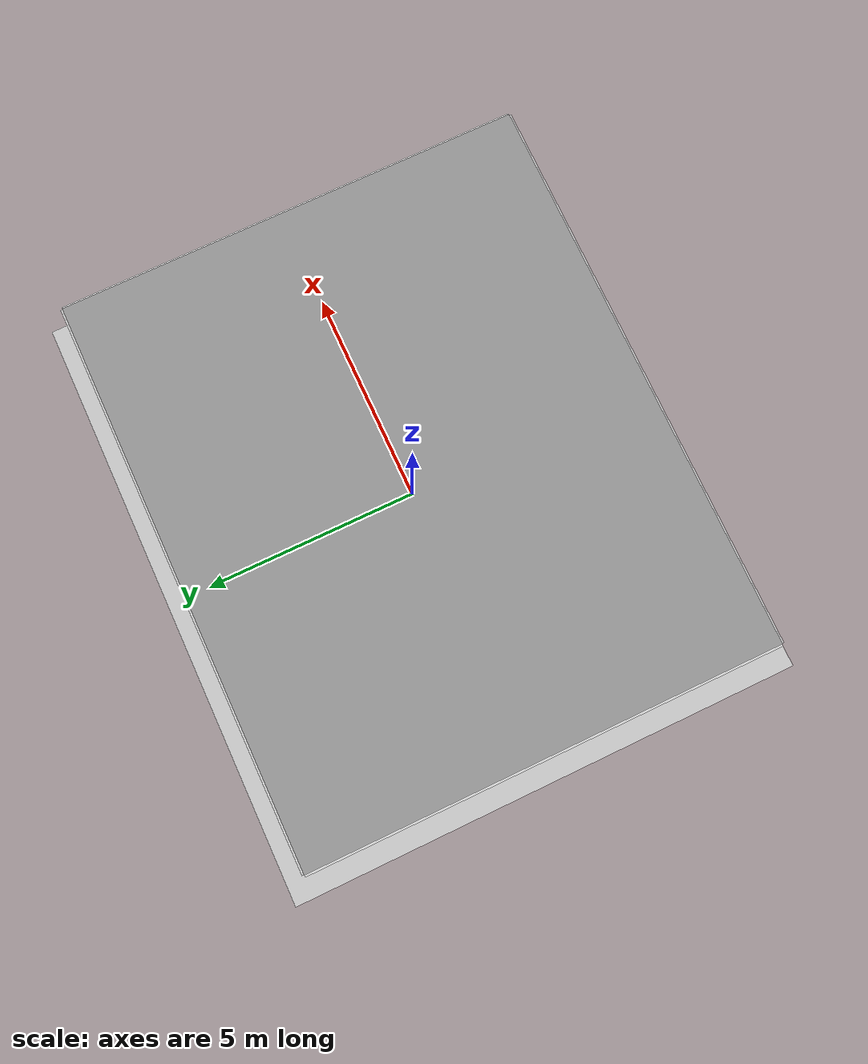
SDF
<?xml version="1.0"?>
<sdf version="1.6">
  <world name="overrack_indoor">

    <!-- Enable Gazebo ROS API plugin for ROS2 services -->

    <!-- Publishes /gazebo/model_states and /gazebo/link_states to ROS2 -->
    <plugin name="gazebo_ros_state" filename="libgazebo_ros_state.so">
      <ros>
        <namespace>/gazebo</namespace>
      </ros>
    </plugin>
    <!-- Provides /gazebo/get_model_state and /gazebo/get_entity_state services -->

    <model name="origin_marker">
  <static>true</static>
  <pose>0 0 0 0 0 0</pose>
  <link name="link">
    <visual name="visual">
      <geometry>
        <box>
          <size>0.2 0.2 0.2</size>
        </box>
      </geometry>
      <material>
        <ambient>1 0 0 1</ambient> <!-- rosso brillante -->
        <diffuse>1 0 0 1</diffuse>
      </material>
    </visual>
  </link>
</model>

    <gravity>0 0 -9.81</gravity>
    <scene>
      <ambient>0.4 0.4 0.4 1</ambient>
      <background>0.7 0.7 0.8 1</background>
      <shadows>true</shadows>
    </scene>

<gui fullscreen="0">
  <camera name="overrack_default">
    <!-- Posizione iniziale della camera nel mondo -->
    <pose>-6 -6 8.0 0 0.75 0.7</pose>

    <!-- Camera in modalità FPS -->
    <view_controller>fps</view_controller>

    <!-- Segui il drone -->
  </camera>
</gui>

    <physics type="ode">
      <max_step_size>0.004</max_step_size>
      <real_time_update_rate>250</real_time_update_rate>
      <real_time_factor>1.0</real_time_factor>
    </physics>

    <include>
      <uri>model://ground_plane</uri>
    </include>

    <!-- Simple room walls -->
    <model name="room">
      <static>true</static>
      <pose>0 0 0 0 0 0</pose>
      <!-- Roof -->
      <link name="roof">
        <pose>0 0 3.0 0 0 0</pose>
        <collision name="col">
          <geometry>
            <box>
              <size>12 10 0.1</size>
            </box>
          </geometry>
        </collision>
        <visual name="vis">
          <geometry>
            <box>
              <size>12 10 0.1</size>
            </box>
          </geometry>
          <material>
            <script>
                <name>Gazebo/Gray</name>
            </script>
            <transparency>0.7</transparency>
            <ambient>1 1 1 0.1</ambient>
            <diffuse>1 1 1 0.1</diffuse>
          </material>
        </visual>
      </link>

      <!-- Four walls: 12m x 10m room, 3m tall -->
      <link name="wall_north">
        <pose>0 5 1.5 0 0 0</pose>
        <collision name="col">
          <geometry>
            <box><size>12 0.1 3</size></box>
          </geometry>
        </collision>
        <visual name="vis">
          <geometry>
            <box><size>12 0.1 3</size></box>
          </geometry>
          <material>
            <ambient>0.85 0.85 0.85 1</ambient>
            <diffuse>0.85 0.85 0.85 1</diffuse>
            <transparency>0.6</transparency>
          </material>
        </visual>
      </link>
      <link name="wall_south">
        <pose>0 -5 1.5 0 0 0</pose>
        <collision name="col">
          <geometry>
            <box><size>12 0.1 3</size></box>
          </geometry>
        </collision>
        <visual name="vis">
          <geometry>
            <box><size>12 0.1 3</size></box>
          </geometry>
          <material>
            <ambient>0.85 0.85 0.85 1</ambient>
            <diffuse>0.85 0.85 0.85 1</diffuse>
            <transparency>0.6</transparency>
          </material>
        </visual>
      </link>
      <link name="wall_east">
        <pose>6 0 1.5 0 0 0</pose>
        <collision name="col">
          <geometry>
            <box><size>0.1 10 3</size></box>
          </geometry>
        </collision>
        <visual name="vis">
          <geometry>
            <box><size>0.1 10 3</size></box>
          </geometry>
          <material>
            <ambient>0.85 0.85 0.85 1</ambient>
            <diffuse>0.85 0.85 0.85 1</diffuse>
            <transparency>0.6</transparency>
          </material>
        </visual>
      </link>
      <link name="wall_west">
        <pose>-6 0 1.5 0 0 0</pose>
        <collision name="col">
          <geometry>
            <box><size>0.1 10 3</size></box>
          </geometry>
        </collision>
        <visual name="vis">
          <geometry>
            <box><size>0.1 10 3</size></box>
          </geometry>
          <material>
            <ambient>0.85 0.85 0.85 1</ambient>
            <diffuse>0.85 0.85 0.85 1</diffuse>
            <transparency>0.6</transparency>
          </material>
        </visual>
      </link>
    </model>

    <!-- Two rack rows -->
    <include>
      <uri>model://overrack_shelf</uri>
      <name>rack_row_a</name>
      <pose>0 -2.5 0 0 0 0</pose>
    </include>
    <include>
      <uri>model://overrack_shelf</uri>
      <name>rack_row_b</name>
      <pose>0 2.5 0 0 0 0</pose>
    </include>

    <!-- Boxes on shelves -->
    <include>
      <uri>model://overrack_box</uri>
      <name>box_a1</name>
      <pose>-0.8 -2.6 0.55 0 0 0</pose>
    </include>
    <include>
      <uri>model://overrack_box</uri>
      <name>box_a2</name>
      <pose>0.0 -2.6 0.55 0 0 0</pose>
    </include>
    <include>
      <uri>model://overrack_box</uri>
      <name>box_a3</name>
      <pose>0.8 -2.6 0.55 0 0 0</pose>
    </include>
    <include>
      <uri>model://overrack_box</uri>
      <name>box_a4</name>
      <pose>-0.8 -2.6 1.55 0 0 0</pose>
    </include>
    <include>
      <uri>model://overrack_box</uri>
      <name>box_a5</name>
      <pose>0.0 -2.6 1.55 0 0 0</pose>
    </include>
    <include>
      <uri>model://overrack_box</uri>
      <name>box_a6</name>
      <pose>0.8 -2.6 1.55 0 0 0</pose>
    </include>

    <include>
      <uri>model://overrack_box</uri>
      <name>box_b1</name>
      <pose>-0.8 2.6 0.55 0 0 0</pose>
    </include>
    <include>
      <uri>model://overrack_box</uri>
      <name>box_b2</name>
      <pose>0.0 2.6 0.55 0 0 0</pose>
    </include>
    <include>
      <uri>model://overrack_box</uri>
      <name>box_b3</name>
      <pose>0.8 2.6 0.55 0 0 0</pose>
    </include>
    <include>
      <uri>model://overrack_box</uri>
      <name>box_b4</name>
      <pose>-0.8 2.6 1.55 0 0 0</pose>
    </include>
    <include>
      <uri>model://overrack_box</uri>
      <name>box_b5</name>
      <pose>0.0 2.6 1.55 0 0 0</pose>
    </include>
    <include>
      <uri>model://overrack_box</uri>
      <name>box_b6</name>
      <pose>0.8 2.6 1.55 0 0 0</pose>
    </include>

    <!-- Barcode boards positioned on upper shelves (placeholders) -->

    <!-- Drone (PX4 Iris variant with downward-facing optical flow/camera) -->
    <!-- Requires PX4 sitl_gazebo models available in GAZEBO_MODEL_PATH -->

    <!-- Disabled for now since PX4 should spawn one -->

    <!-- Visible scan markers aligned with config/mission.yaml (ENU, z=0) -->
<!-- ====== NON-COLLIDABLE WAYPOINT MARKERS (visual-only) ====== -->
<!-- helper: un marker visual-only -->
<!-- (SDF non supporta macro: duplico il blocco per ogni waypoint) -->
<!--      CEILING NEON LIGHTS -->

<!-- Neon Row 1 (center row) -->
<light type="spot" name="neon_row1_1">
  <pose>-2.0 4 2.9 -0.50 -0.40 0</pose>
  <diffuse>0.5 0.5 0.5 1</diffuse>
  <specular>0.2 0.2 0.2 1</specular>
  <attenuation>
    <range>25</range>
    <constant>0.5</constant>
    <linear>0.02</linear>
    <quadratic>0.005</quadratic>
  </attenuation>
  <spot>
    <inner_angle>0.6</inner_angle>
    <outer_angle>1.0</outer_angle>
    <falloff>0.3</falloff>
  </spot>
</light>

<light type="spot" name="neon_row1_2">
  <pose>0 4 2.9 -0.80 0 0</pose>
  <diffuse>0.5 0.5 0.5 1</diffuse>
  <specular>0.2 0.2 0.2 1</specular>
  <attenuation>
    <range>25</range>
    <constant>0.5</constant>
    <linear>0.02</linear>
    <quadratic>0.005</quadratic>
  </attenuation>
  <spot>
    <inner_angle>0.6</inner_angle>
    <outer_angle>1.0</outer_angle>
    <falloff>0.3</falloff>
  </spot>
</light>

<light type="spot" name="neon_row1_3">
  <pose>2 4 2.9 -0.50 0.40 0</pose>
  <diffuse>0.5 0.5 0.5 1</diffuse>
  <specular>0.2 0.2 0.2 1</specular>
  <attenuation>
    <range>25</range>
    <constant>0.5</constant>
    <linear>0.02</linear>
    <quadratic>0.005</quadratic>
  </attenuation>
  <spot>
    <inner_angle>0.6</inner_angle>
    <outer_angle>1.0</outer_angle>
    <falloff>0.3</falloff>
  </spot>
</light>

<!-- Neon Row 2 (above rack A/B aisles) -->
<light type="spot" name="neon_row2_1">
  <pose>-2 -4 2.9 0.50 -0.40 0</pose>
  <diffuse>0.5 0.5 0.5 1</diffuse>
  <specular>0.2 0.2 0.2 1</specular>
  <attenuation>
    <range>25</range>
    <constant>0.5</constant>
    <linear>0.02</linear>
    <quadratic>0.005</quadratic>
  </attenuation>
  <spot>
    <inner_angle>0.6</inner_angle>
    <outer_angle>1.0</outer_angle>
    <falloff>0.3</falloff>
  </spot>
</light>

<light type="spot" name="neon_row2_2">
  <pose>0 -4 2.9 0.80 0 0</pose>
  <diffuse>0.5 0.5 0.5 1</diffuse>
  <specular>0.2 0.2 0.2 1</specular>
  <attenuation>
    <range>25</range>
    <constant>0.5</constant>
    <linear>0.02</linear>
    <quadratic>0.005</quadratic>
  </attenuation>
  <spot>
    <inner_angle>0.6</inner_angle>
    <outer_angle>1.0</outer_angle>
    <falloff>0.3</falloff>
  </spot>
</light>

<light type="spot" name="neon_row2_3">
  <pose>2 -4 2.9 0.50 0.40 0</pose>
  <diffuse>0.5 0.5 0.5 1</diffuse>
  <specular>0.2 0.2 0.2 1</specular>
  <attenuation>
    <range>25</range>
    <constant>0.5</constant>
    <linear>0.02</linear>
    <quadratic>0.005</quadratic>
  </attenuation>
  <spot>
    <inner_angle>0.6</inner_angle>
    <outer_angle>1.0</outer_angle>
    <falloff>0.3</falloff>
  </spot>
</light>

<!-- spawn (floor) -->
<model name="wp_spawn_floor">
  <static>true</static>
  <pose>0.0 0.0 0 0 0 0</pose>
  <link name="link">
    <visual name="vis">
      <geometry><cylinder><radius>0.07</radius><length>0.01</length></cylinder></geometry>
      <material><ambient>0.2 0.8 0.2 1</ambient><diffuse>0.2 0.8 0.2 1</diffuse></material>
    </visual>
  </link>
</model>

  </world>
</sdf>

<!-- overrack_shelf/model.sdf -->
<sdf version="1.6">
  <model name="overrack_shelf">
    <static>true</static>
    <!-- Dimensions: width 2.4m, depth 0.8m, height 2.0m -->
    <link name="frame">
      <!-- Four support posts -->
      <visual name="post_fl">
        <pose>-1.2 -0.4 1.0 0 0 0</pose>
        <geometry><box><size>0.06 0.06 2.0</size></box></geometry>
        <material><ambient>0.3 0.3 0.35 1</ambient><diffuse>0.3 0.3 0.35 1</diffuse></material>
      </visual>
      <collision name="post_fl_c">
        <pose>-1.2 -0.4 1.0 0 0 0</pose>
        <geometry><box><size>0.06 0.06 2.0</size></box></geometry>
      </collision>

      <visual name="post_fr">
        <pose>1.2 -0.4 1.0 0 0 0</pose>
        <geometry><box><size>0.06 0.06 2.0</size></box></geometry>
        <material><ambient>0.3 0.3 0.35 1</ambient><diffuse>0.3 0.3 0.35 1</diffuse></material>
      </visual>
      <collision name="post_fr_c">
        <pose>1.2 -0.4 1.0 0 0 0</pose>
        <geometry><box><size>0.06 0.06 2.0</size></box></geometry>
      </collision>

      <visual name="post_rl">
        <pose>-1.2 0.4 1.0 0 0 0</pose>
        <geometry><box><size>0.06 0.06 2.0</size></box></geometry>
        <material><ambient>0.3 0.3 0.35 1</ambient><diffuse>0.3 0.3 0.35 1</diffuse></material>
      </visual>
      <collision name="post_rl_c">
        <pose>-1.2 0.4 1.0 0 0 0</pose>
        <geometry><box><size>0.06 0.06 2.0</size></box></geometry>
      </collision>

      <visual name="post_rr">
        <pose>1.2 0.4 1.0 0 0 0</pose>
        <geometry><box><size>0.06 0.06 2.0</size></box></geometry>
        <material><ambient>0.3 0.3 0.35 1</ambient><diffuse>0.3 0.3 0.35 1</diffuse></material>
      </visual>
      <collision name="post_rr_c">
        <pose>1.2 0.4 1.0 0 0 0</pose>
        <geometry><box><size>0.06 0.06 2.0</size></box></geometry>
      </collision>

      <!-- Shelves (boards) at 0.5m and 1.5m -->
      <visual name="shelf_low">
        <pose>0 0 0.5 0 0 0</pose>
        <geometry><box><size>2.4 0.8 0.04</size></box></geometry>
        <material><ambient>0.6 0.5 0.4 1</ambient><diffuse>0.6 0.5 0.4 1</diffuse></material>
      </visual>
      <collision name="shelf_low_c">
        <pose>0 0 0.5 0 0 0</pose>
        <geometry><box><size>2.4 0.8 0.04</size></box></geometry>
      </collision>

      <visual name="shelf_up">
        <pose>0 0 1.5 0 0 0</pose>
        <geometry><box><size>2.4 0.8 0.04</size></box></geometry>
        <material><ambient>0.6 0.5 0.4 1</ambient><diffuse>0.6 0.5 0.4 1</diffuse></material>
      </visual>
      <collision name="shelf_up_c">
        <pose>0 0 1.5 0 0 0</pose>
        <geometry><box><size>2.4 0.8 0.04</size></box></geometry>
      </collision>
    </link>
  </model>
</sdf>

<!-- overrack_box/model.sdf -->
<sdf version="1.6">
  <model name="overrack_box">
    <static>true</static>
    <link name="box_link">
      <pose>0 0 0.1 0 0 0</pose>
      <collision name="box_collision">
        <geometry>
          <box>
            <size>0.4 0.3 0.2</size>
          </box>
        </geometry>
      </collision>
      <visual name="box_visual">
        <geometry>
          <box>
            <size>0.4 0.3 0.2</size>
          </box>
        </geometry>
        <material>
          <ambient>0.8 0.6 0.3 1</ambient>
          <diffuse>0.8 0.6 0.3 1</diffuse>
        </material>
      </visual>
    </link>
  </model>
</sdf>
